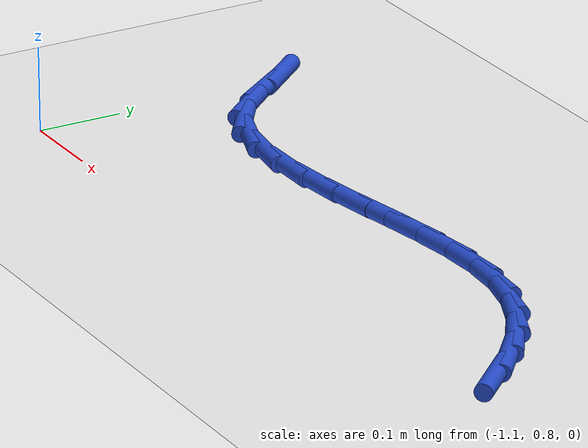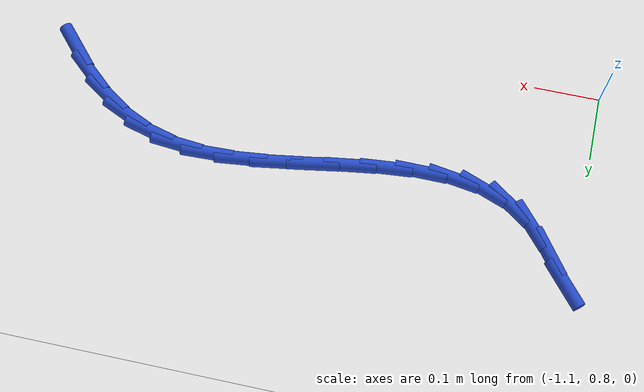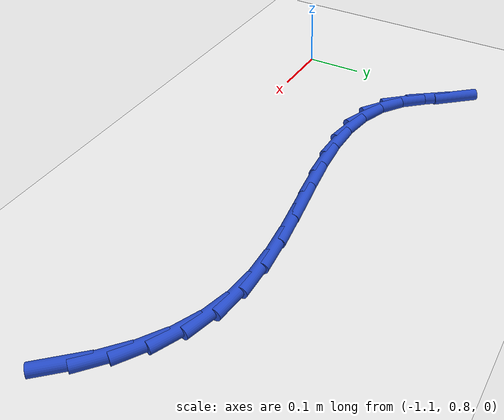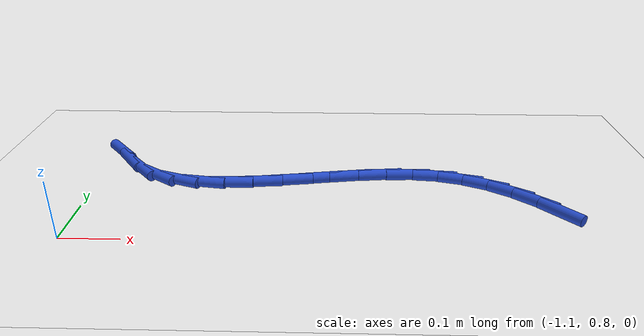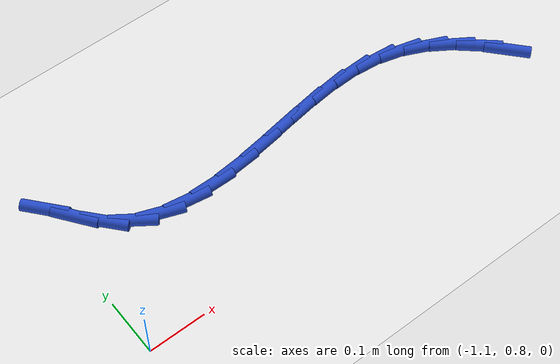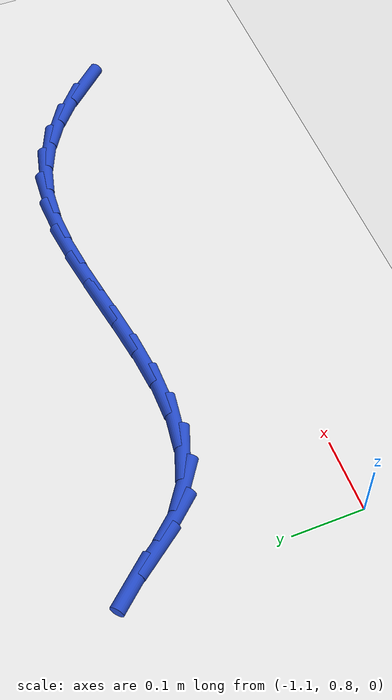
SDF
<sdf version="1.6">
 <world name="default">
  <model name="ground_plane">
   <static>1</static>
   <link name="link">
    <collision name="collision">
     <geometry><plane><normal>0 0 1</normal><size>100 100</size></plane></geometry>
     <surface><friction><ode><mu>100</mu><mu2>50</mu2></ode></friction></surface>
    </collision>
    <visual name="visual">
     <cast_shadows>0</cast_shadows>
     <geometry><plane><normal>0 0 1</normal><size>100 100</size></plane></geometry>
     <material>
      <script><uri>file://media/materials/scripts/gazebo.material</uri><name>Gazebo/WhiteGlow</name></script>
     </material>
    </visual>
   </link>
  </model>
  <model name="line">
   <link name="link_18">
    <pose>-0.294381118032566 0.8859747704978566 0.01 0 1.57 -0.8414125216707599</pose>
    <collision name="collision">
     <geometry><cylinder><radius>0.01</radius><length>0.08</length></cylinder></geometry>
    </collision>
    <visual name="visual">
     <material>
      <script><name>Gazebo/Blue</name><uri>file://media/materials/scripts/gazebo.material</uri></script>
     </material>
     <geometry><cylinder><radius>0.01</radius><length>0.08</length></cylinder></geometry>
    </visual>
   </link>
   <link name="link_19">
    <pose>-0.326615984366864 0.9220393952618191 0.01 0 1.57 -0.7231814292182548</pose>
    <collision name="collision">
     <geometry><cylinder><radius>0.01</radius><length>0.08</length></cylinder></geometry>
    </collision>
    <visual name="visual">
     <material>
      <script><name>Gazebo/Blue</name><uri>file://media/materials/scripts/gazebo.material</uri></script>
     </material>
     <geometry><cylinder><radius>0.01</radius><length>0.08</length></cylinder></geometry>
    </visual>
   </link>
   <link name="link_20">
    <pose>-0.3616798583596846 0.9529907118571445 0.01 0 1.57 -0.5841579033929195</pose>
    <collision name="collision">
     <geometry><cylinder><radius>0.01</radius><length>0.08</length></cylinder></geometry>
    </collision>
    <visual name="visual">
     <material>
      <script><name>Gazebo/Blue</name><uri>file://media/materials/scripts/gazebo.material</uri></script>
     </material>
     <geometry><cylinder><radius>0.01</radius><length>0.08</length></cylinder></geometry>
    </visual>
   </link>
   <link name="link_21">
    <pose>-0.3997893972755676 0.9781859715315858 0.01 0 1.57 -0.42644844307682833</pose>
    <collision name="collision">
     <geometry><cylinder><radius>0.01</radius><length>0.08</length></cylinder></geometry>
    </collision>
    <visual name="visual">
     <material>
      <script><name>Gazebo/Blue</name><uri>file://media/materials/scripts/gazebo.material</uri></script>
     </material>
     <geometry><cylinder><radius>0.01</radius><length>0.08</length></cylinder></geometry>
    </visual>
   </link>
   <link name="link_22">
    <pose>-0.44116125837905246 0.9969824255328961 0.01 0 1.57 -0.2563235282814316</pose>
    <collision name="collision">
     <geometry><cylinder><radius>0.01</radius><length>0.08</length></cylinder></geometry>
    </collision>
    <visual name="visual">
     <material>
      <script><name>Gazebo/Blue</name><uri>file://media/materials/scripts/gazebo.material</uri></script>
     </material>
     <geometry><cylinder><radius>0.01</radius><length>0.08</length></cylinder></geometry>
    </visual>
   </link>
   <link name="link_23">
    <pose>-0.4860120989346792 1.0087373251088285 0.01 0 1.57 -0.09017680046027902</pose>
    <collision name="collision">
     <geometry><cylinder><radius>0.01</radius><length>0.08</length></cylinder></geometry>
    </collision>
    <visual name="visual">
     <material>
      <script><name>Gazebo/Blue</name><uri>file://media/materials/scripts/gazebo.material</uri></script>
     </material>
     <geometry><cylinder><radius>0.01</radius><length>0.08</length></cylinder></geometry>
    </visual>
   </link>
   <link name="link_24">
    <pose>-0.5344193644499591 1.013114408472004 0.01 0 1.57 0.03327140573761685</pose>
    <collision name="collision">
     <geometry><cylinder><radius>0.01</radius><length>0.08</length></cylinder></geometry>
    </collision>
    <visual name="visual">
     <material>
      <script><name>Gazebo/Blue</name><uri>file://media/materials/scripts/gazebo.material</uri></script>
     </material>
     <geometry><cylinder><radius>0.01</radius><length>0.08</length></cylinder></geometry>
    </visual>
   </link>
   <link name="link_25">
    <pose>-0.5857203490060683 1.0114069224989901 0.01 0 1.57 0.11137271273972658</pose>
    <collision name="collision">
     <geometry><cylinder><radius>0.01</radius><length>0.08</length></cylinder></geometry>
    </collision>
    <visual name="visual">
     <material>
      <script><name>Gazebo/Blue</name><uri>file://media/materials/scripts/gazebo.material</uri></script>
     </material>
     <geometry><cylinder><radius>0.01</radius><length>0.08</length></cylinder></geometry>
    </visual>
   </link>
   <link name="link_26">
    <pose>-0.6390073267635895 1.0054475470380935 0.01 0 1.57 0.1529076866029552</pose>
    <collision name="collision">
     <geometry><cylinder><radius>0.01</radius><length>0.08</length></cylinder></geometry>
    </collision>
    <visual name="visual">
     <material>
      <script><name>Gazebo/Blue</name><uri>file://media/materials/scripts/gazebo.material</uri></script>
     </material>
     <geometry><cylinder><radius>0.01</radius><length>0.08</length></cylinder></geometry>
    </visual>
   </link>
   <link name="link_27">
    <pose>-0.6933724143653721 0.9970693087268081 0.01 0 1.57 0.16291512776615355</pose>
    <collision name="collision">
     <geometry><cylinder><radius>0.01</radius><length>0.08</length></cylinder></geometry>
    </collision>
    <visual name="visual">
     <material>
      <script><name>Gazebo/Blue</name><uri>file://media/materials/scripts/gazebo.material</uri></script>
     </material>
     <geometry><cylinder><radius>0.01</radius><length>0.08</length></cylinder></geometry>
    </visual>
   </link>
   <link name="link_28">
    <pose>-0.7479077284542658 0.9881052342026269 0.01 0 1.57 0.1424709062198668</pose>
    <collision name="collision">
     <geometry><cylinder><radius>0.01</radius><length>0.08</length></cylinder></geometry>
    </collision>
    <visual name="visual">
     <material>
      <script><name>Gazebo/Blue</name><uri>file://media/materials/scripts/gazebo.material</uri></script>
     </material>
     <geometry><cylinder><radius>0.01</radius><length>0.08</length></cylinder></geometry>
    </visual>
   </link>
   <link name="link_29">
    <pose>-0.8017053856731208 0.9803883501030435 0.01 0 1.57 0.08867344712582415</pose>
    <collision name="collision">
     <geometry><cylinder><radius>0.01</radius><length>0.08</length></cylinder></geometry>
    </collision>
    <visual name="visual">
     <material>
      <script><name>Gazebo/Blue</name><uri>file://media/materials/scripts/gazebo.material</uri></script>
     </material>
     <geometry><cylinder><radius>0.01</radius><length>0.08</length></cylinder></geometry>
    </visual>
   </link>
   <link name="link_30">
    <pose>-0.8538575026647859 0.9757516830655513 0.01 0 1.57 -0.005576231477649407</pose>
    <collision name="collision">
     <geometry><cylinder><radius>0.01</radius><length>0.08</length></cylinder></geometry>
    </collision>
    <visual name="visual">
     <material>
      <script><name>Gazebo/Blue</name><uri>file://media/materials/scripts/gazebo.material</uri></script>
     </material>
     <geometry><cylinder><radius>0.01</radius><length>0.08</length></cylinder></geometry>
    </visual>
   </link>
   <link name="link_31">
    <pose>-0.9034561960721113 0.9760282597276433 0.01 0 1.57 -0.1510564470130311</pose>
    <collision name="collision">
     <geometry><cylinder><radius>0.01</radius><length>0.08</length></cylinder></geometry>
    </collision>
    <visual name="visual">
     <material>
      <script><name>Gazebo/Blue</name><uri>file://media/materials/scripts/gazebo.material</uri></script>
     </material>
     <geometry><cylinder><radius>0.01</radius><length>0.08</length></cylinder></geometry>
    </visual>
   </link>
   <link name="link_32">
    <pose>-0.949593582537946 0.9830511067268131 0.01 0 1.57 -0.3574911483254432</pose>
    <collision name="collision">
     <geometry><cylinder><radius>0.01</radius><length>0.08</length></cylinder></geometry>
    </collision>
    <visual name="visual">
     <material>
      <script><name>Gazebo/Blue</name><uri>file://media/materials/scripts/gazebo.material</uri></script>
     </material>
     <geometry><cylinder><radius>0.01</radius><length>0.08</length></cylinder></geometry>
    </visual>
   </link>
   <link name="link_33">
    <pose>-0.9913617787051403 0.9986532507005537 0.01 0 1.57 -0.6193011846903569</pose>
    <collision name="collision">
     <geometry><cylinder><radius>0.01</radius><length>0.08</length></cylinder></geometry>
    </collision>
    <visual name="visual">
     <material>
      <script><name>Gazebo/Blue</name><uri>file://media/materials/scripts/gazebo.material</uri></script>
     </material>
     <geometry><cylinder><radius>0.01</radius><length>0.08</length></cylinder></geometry>
    </visual>
   </link>
   <link name="link_34">
    <pose>-1.0278535531143147 1.024666578300198 0.01 0 1.57 -0.8583462180130956</pose>
    <collision name="collision">
     <geometry><cylinder><radius>0.01</radius><length>0.08</length></cylinder></geometry>
    </collision>
    <visual name="visual">
     <material>
      <script><name>Gazebo/Blue</name><uri>file://media/materials/scripts/gazebo.material</uri></script>
     </material>
     <geometry><cylinder><radius>0.01</radius><length>0.08</length></cylinder></geometry>
    </visual>
   </link>
   <link name="link_35">
    <pose>-1.0592521466866684 1.0610160461672293 0.01 0 1.57 -0.9399554776087398</pose>
    <collision name="collision">
     <geometry><cylinder><radius>0.01</radius><length>0.08</length></cylinder></geometry>
    </collision>
    <visual name="visual">
     <material>
      <script><name>Gazebo/Blue</name><uri>file://media/materials/scripts/gazebo.material</uri></script>
     </material>
     <geometry><cylinder><radius>0.01</radius><length>0.08</length></cylinder></geometry>
    </visual>
   </link>
   <link name="link_36">
    <pose>-1.0890587462248686 1.1018244552121772 0.01 0 1.57 -0.8694432912183789</pose>
    <collision name="collision">
     <geometry><cylinder><radius>0.01</radius><length>0.08</length></cylinder></geometry>
    </collision>
    <visual name="visual">
     <material>
      <script><name>Gazebo/Blue</name><uri>file://media/materials/scripts/gazebo.material</uri></script>
     </material>
     <geometry><cylinder><radius>0.01</radius><length>0.08</length></cylinder></geometry>
    </visual>
   </link>
  </model>
 </world>
</sdf>
